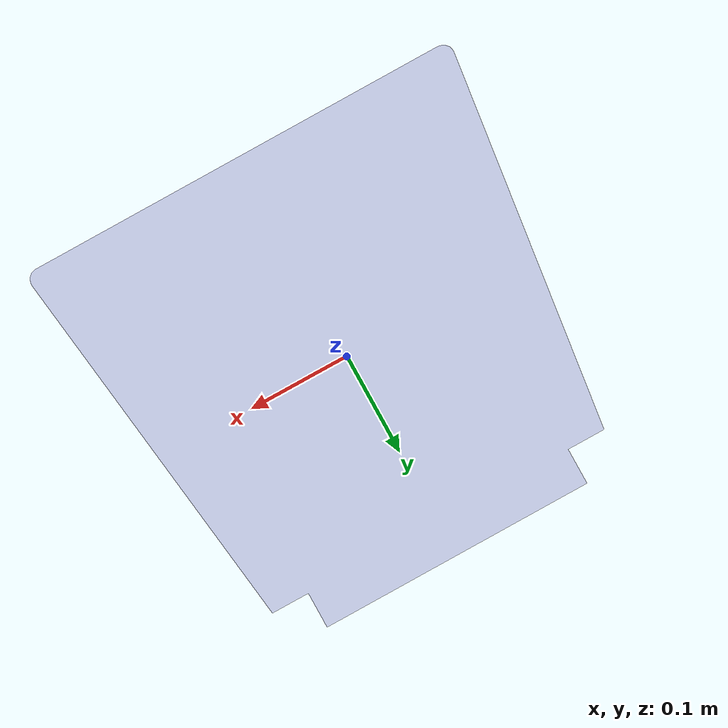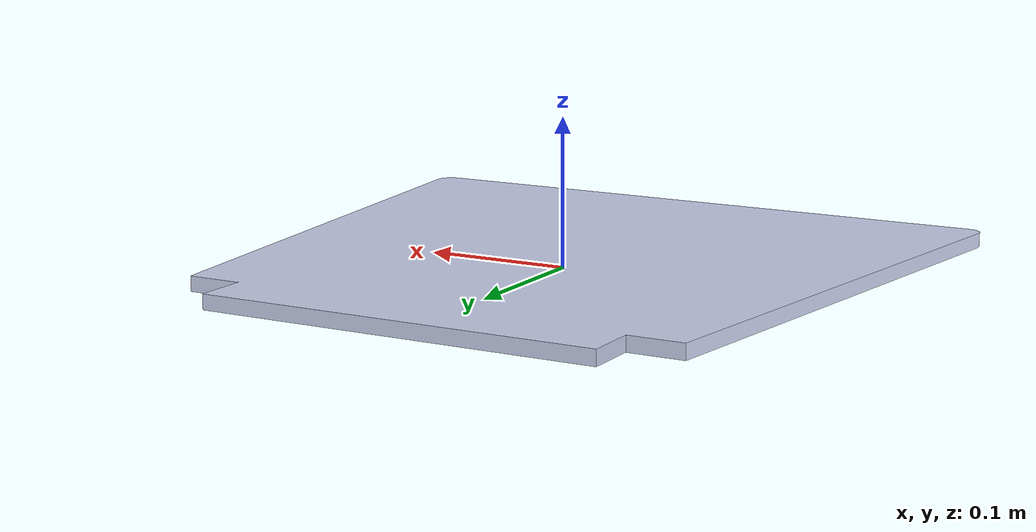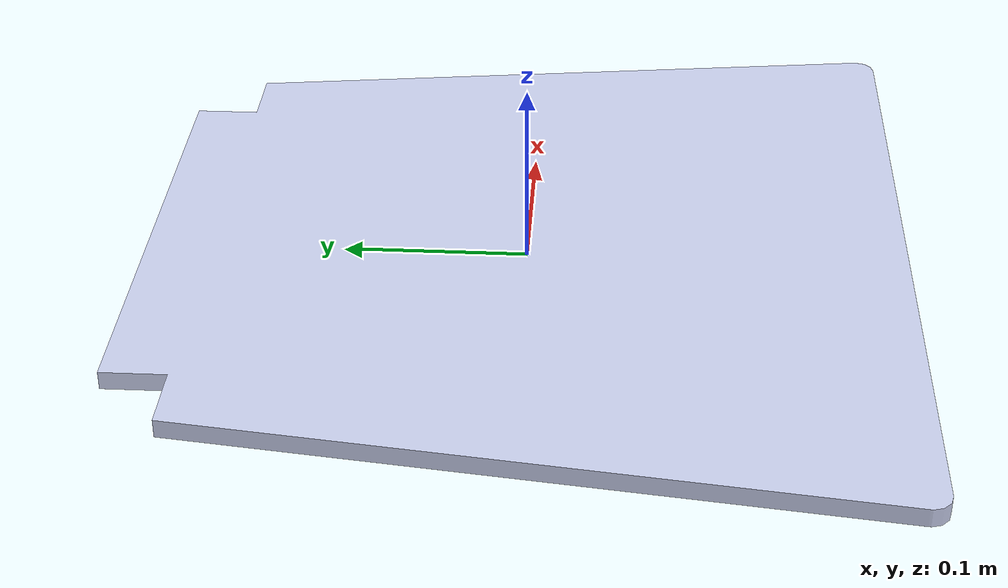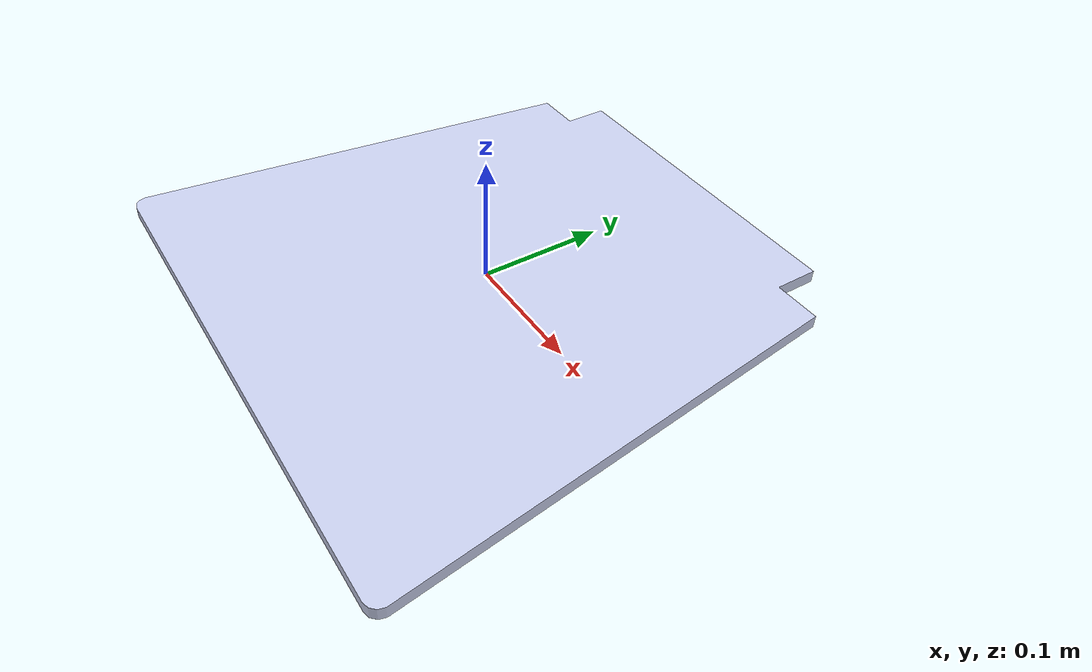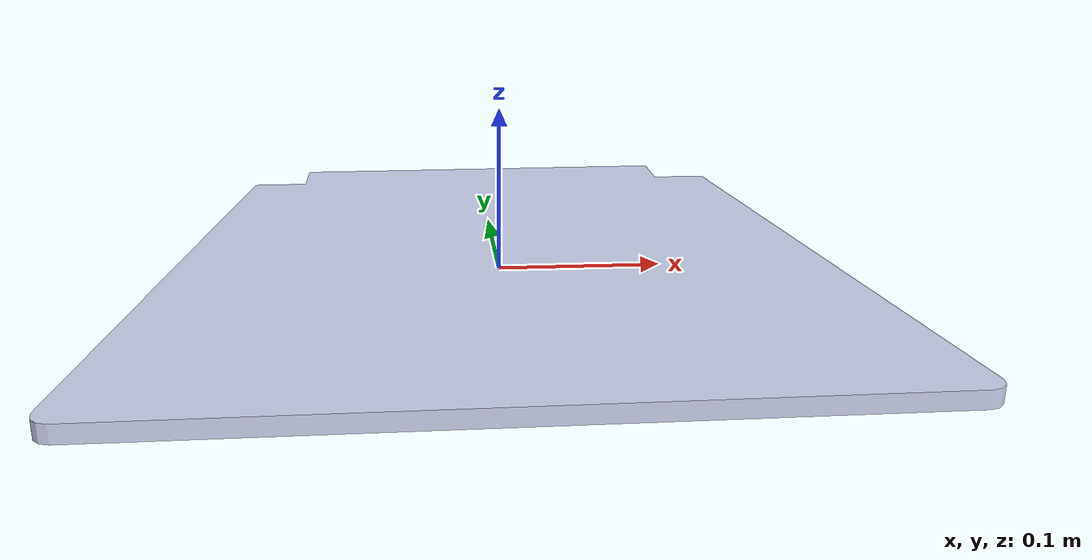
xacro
<?xml version="1.0" encoding="utf-8"?>
<robot name="PART1.SLDPRT" xmlns:xacro="http://www.ros.org/wiki/xacro">

	<link name="PART1.SLDPRT">
		<inertial>
			<origin xyz="-4.5591E-18 -0.012314 0.005" rpy="0 0 0"></origin>
			<mass value="1.556"></mass>
			<inertia ixx="0.021045" ixy="-1.1594E-18" ixz="6.9483E-20" iyy="0.019376" iyz="5.4332E-20" izz="0.040395"></inertia>
		</inertial>
		<visual>
			<origin xyz="0 0 0" rpy="0 0 0"></origin>
			<geometry>
				<mesh filename="package://object_description/urdfs_from_hj/PART1.SLDPRT/meshes/PART1.SLDPRT.STL"></mesh>
			</geometry>
			<material name="">
				<color rgba="0.79216 0.81961 0.93333 1"></color>
			</material>
		</visual>
		<collision>
			<origin xyz="0 0 0" rpy="0 0 0"></origin>
			<geometry>
				<mesh filename="package://object_description/urdfs_from_hj/PART1.SLDPRT/meshes/PART1.SLDPRT.STL"></mesh>
			</geometry>
		</collision>
	</link>
</robot>
